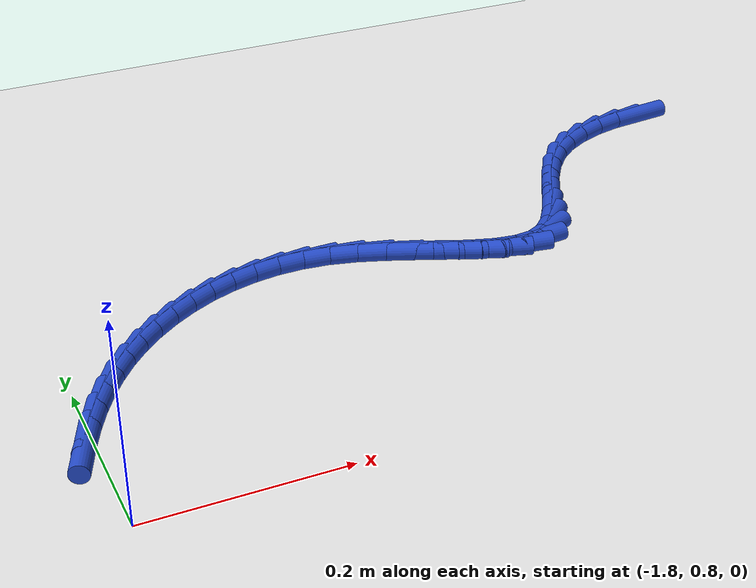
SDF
<sdf version="1.6">
 <world name="default">
  <model name="ground_plane">
   <static>1</static>
   <link name="link">
    <collision name="collision">
     <geometry><plane><normal>0 0 1</normal><size>100 100</size></plane></geometry>
     <surface><friction><ode><mu>100</mu><mu2>50</mu2></ode></friction></surface>
    </collision>
    <visual name="visual">
     <cast_shadows>0</cast_shadows>
     <geometry><plane><normal>0 0 1</normal><size>100 100</size></plane></geometry>
     <material>
      <script><uri>file://media/materials/scripts/gazebo.material</uri><name>Gazebo/WhiteGlow</name></script>
     </material>
    </visual>
   </link>
  </model>
  <model name="line">
   <link name="link_73">
    <pose>-1.0189516158003753 1.2875033139351477 0.01 0 1.57 0.10560261740623014</pose>
    <collision name="collision">
     <geometry><cylinder><radius>0.01</radius><length>0.08</length></cylinder></geometry>
    </collision>
    <visual name="visual">
     <material>
      <script><name>Gazebo/Blue</name><uri>file://media/materials/scripts/gazebo.material</uri></script>
     </material>
     <geometry><cylinder><radius>0.01</radius><length>0.08</length></cylinder></geometry>
    </visual>
   </link>
   <link name="link_74">
    <pose>-1.0502641416126792 1.2841842822185414 0.01 0 1.57 0.22751819118289002</pose>
    <collision name="collision">
     <geometry><cylinder><radius>0.01</radius><length>0.08</length></cylinder></geometry>
    </collision>
    <visual name="visual">
     <material>
      <script><name>Gazebo/Blue</name><uri>file://media/materials/scripts/gazebo.material</uri></script>
     </material>
     <geometry><cylinder><radius>0.01</radius><length>0.08</length></cylinder></geometry>
    </visual>
   </link>
   <link name="link_75">
    <pose>-1.0804068843879446 1.277205423169796 0.01 0 1.57 0.36177736097876495</pose>
    <collision name="collision">
     <geometry><cylinder><radius>0.01</radius><length>0.08</length></cylinder></geometry>
    </collision>
    <visual name="visual">
     <material>
      <script><name>Gazebo/Blue</name><uri>file://media/materials/scripts/gazebo.material</uri></script>
     </material>
     <geometry><cylinder><radius>0.01</radius><length>0.08</length></cylinder></geometry>
    </visual>
   </link>
   <link name="link_76">
    <pose>-1.1087831632364145 1.26646689182318 0.01 0 1.57 0.5113861078961459</pose>
    <collision name="collision">
     <geometry><cylinder><radius>0.01</radius><length>0.08</length></cylinder></geometry>
    </collision>
    <visual name="visual">
     <material>
      <script><name>Gazebo/Blue</name><uri>file://media/materials/scripts/gazebo.material</uri></script>
     </material>
     <geometry><cylinder><radius>0.01</radius><length>0.08</length></cylinder></geometry>
    </visual>
   </link>
   <link name="link_77">
    <pose>-1.1347962972683323 1.2518688432129599 0.01 0 1.57 0.6777690725338601</pose>
    <collision name="collision">
     <geometry><cylinder><radius>0.01</radius><length>0.08</length></cylinder></geometry>
    </collision>
    <visual name="visual">
     <material>
      <script><name>Gazebo/Blue</name><uri>file://media/materials/scripts/gazebo.material</uri></script>
     </material>
     <geometry><cylinder><radius>0.01</radius><length>0.08</length></cylinder></geometry>
    </visual>
   </link>
   <link name="link_78">
    <pose>-1.1578496055939413 1.233311432373404 0.01 0 1.57 0.8499789660706343</pose>
    <collision name="collision">
     <geometry><cylinder><radius>0.01</radius><length>0.08</length></cylinder></geometry>
    </collision>
    <visual name="visual">
     <material>
      <script><name>Gazebo/Blue</name><uri>file://media/materials/scripts/gazebo.material</uri></script>
     </material>
     <geometry><cylinder><radius>0.01</radius><length>0.08</length></cylinder></geometry>
    </visual>
   </link>
   <link name="link_79">
    <pose>-1.1775340755475856 1.210904906817466 0.01 0 1.57 0.9785196688960819</pose>
    <collision name="collision">
     <geometry><cylinder><radius>0.01</radius><length>0.08</length></cylinder></geometry>
    </collision>
    <visual name="visual">
     <material>
      <script><name>Gazebo/Blue</name><uri>file://media/materials/scripts/gazebo.material</uri></script>
     </material>
     <geometry><cylinder><radius>0.01</radius><length>0.08</length></cylinder></geometry>
    </visual>
   </link>
   <link name="link_80">
    <pose>-1.1944020579432237 1.1858357497251557 0.01 0 1.57 1.0534211688973831</pose>
    <collision name="collision">
     <geometry><cylinder><radius>0.01</radius><length>0.08</length></cylinder></geometry>
    </collision>
    <visual name="visual">
     <material>
      <script><name>Gazebo/Blue</name><uri>file://media/materials/scripts/gazebo.material</uri></script>
     </material>
     <geometry><cylinder><radius>0.01</radius><length>0.08</length></cylinder></geometry>
    </visual>
   </link>
   <link name="link_81">
    <pose>-1.209312914943217 1.1596341400485264 0.01 0 1.57 1.0792943449092827</pose>
    <collision name="collision">
     <geometry><cylinder><radius>0.01</radius><length>0.08</length></cylinder></geometry>
    </collision>
    <visual name="visual">
     <material>
      <script><name>Gazebo/Blue</name><uri>file://media/materials/scripts/gazebo.material</uri></script>
     </material>
     <geometry><cylinder><radius>0.01</radius><length>0.08</length></cylinder></geometry>
    </visual>
   </link>
   <link name="link_82">
    <pose>-1.2231261432172251 1.1338304073190486 0.01 0 1.57 1.0538018304339323</pose>
    <collision name="collision">
     <geometry><cylinder><radius>0.01</radius><length>0.08</length></cylinder></geometry>
    </collision>
    <visual name="visual">
     <material>
      <script><name>Gazebo/Blue</name><uri>file://media/materials/scripts/gazebo.material</uri></script>
     </material>
     <geometry><cylinder><radius>0.01</radius><length>0.08</length></cylinder></geometry>
    </visual>
   </link>
   <link name="link_83">
    <pose>-1.2367012394349075 1.1099548810681927 0.01 0 1.57 0.9632142778970019</pose>
    <collision name="collision">
     <geometry><cylinder><radius>0.01</radius><length>0.08</length></cylinder></geometry>
    </collision>
    <visual name="visual">
     <material>
      <script><name>Gazebo/Blue</name><uri>file://media/materials/scripts/gazebo.material</uri></script>
     </material>
     <geometry><cylinder><radius>0.01</radius><length>0.08</length></cylinder></geometry>
    </visual>
   </link>
   <link name="link_84">
    <pose>-1.2508977002659234 1.0895378908274296 0.01 0 1.57 0.777386959277107</pose>
    <collision name="collision">
     <geometry><cylinder><radius>0.01</radius><length>0.08</length></cylinder></geometry>
    </collision>
    <visual name="visual">
     <material>
      <script><name>Gazebo/Blue</name><uri>file://media/materials/scripts/gazebo.material</uri></script>
     </material>
     <geometry><cylinder><radius>0.01</radius><length>0.08</length></cylinder></geometry>
    </visual>
   </link>
   <link name="link_85">
    <pose>-1.2665750223799335 1.0741097661282302 0.01 0 1.57 0.4604583368055337</pose>
    <collision name="collision">
     <geometry><cylinder><radius>0.01</radius><length>0.08</length></cylinder></geometry>
    </collision>
    <visual name="visual">
     <material>
      <script><name>Gazebo/Blue</name><uri>file://media/materials/scripts/gazebo.material</uri></script>
     </material>
     <geometry><cylinder><radius>0.01</radius><length>0.08</length></cylinder></geometry>
    </visual>
   </link>
   <link name="link_86">
    <pose>-1.2845828539479256 1.0651775261360912 0.01 0 1.57 0.10005305150495136</pose>
    <collision name="collision">
     <geometry><cylinder><radius>0.01</radius><length>0.08</length></cylinder></geometry>
    </collision>
    <visual name="visual">
     <material>
      <script><name>Gazebo/Blue</name><uri>file://media/materials/scripts/gazebo.material</uri></script>
     </material>
     <geometry><cylinder><radius>0.01</radius><length>0.08</length></cylinder></geometry>
    </visual>
   </link>
   <link name="link_87">
    <pose>-1.3052854148795963 1.0630992321091057 0.01 0 1.57 -0.14989063920724094</pose>
    <collision name="collision">
     <geometry><cylinder><radius>0.01</radius><length>0.08</length></cylinder></geometry>
    </collision>
    <visual name="visual">
     <material>
      <script><name>Gazebo/Blue</name><uri>file://media/materials/scripts/gazebo.material</uri></script>
     </material>
     <geometry><cylinder><radius>0.01</radius><length>0.08</length></cylinder></geometry>
    </visual>
   </link>
   <link name="link_88">
    <pose>-1.3283496059032491 1.066582463758795 0.01 0 1.57 -0.2955903617481888</pose>
    <collision name="collision">
     <geometry><cylinder><radius>0.01</radius><length>0.08</length></cylinder></geometry>
    </collision>
    <visual name="visual">
     <material>
      <script><name>Gazebo/Blue</name><uri>file://media/materials/scripts/gazebo.material</uri></script>
     </material>
     <geometry><cylinder><radius>0.01</radius><length>0.08</length></cylinder></geometry>
    </visual>
   </link>
   <link name="link_89">
    <pose>-1.3533883504169526 1.0742070421032976 0.01 0 1.57 -0.3706010531125822</pose>
    <collision name="collision">
     <geometry><cylinder><radius>0.01</radius><length>0.08</length></cylinder></geometry>
    </collision>
    <visual name="visual">
     <material>
      <script><name>Gazebo/Blue</name><uri>file://media/materials/scripts/gazebo.material</uri></script>
     </material>
     <geometry><cylinder><radius>0.01</radius><length>0.08</length></cylinder></geometry>
    </visual>
   </link>
   <link name="link_90">
    <pose>-1.380014571818775 1.0845527881607504 0.01 0 1.57 -0.39639179155879334</pose>
    <collision name="collision">
     <geometry><cylinder><radius>0.01</radius><length>0.08</length></cylinder></geometry>
    </collision>
    <visual name="visual">
     <material>
      <script><name>Gazebo/Blue</name><uri>file://media/materials/scripts/gazebo.material</uri></script>
     </material>
     <geometry><cylinder><radius>0.01</radius><length>0.08</length></cylinder></geometry>
    </visual>
   </link>
   <link name="link_91">
    <pose>-1.4078411935067852 1.0961995229492911 0.01 0 1.57 -0.38265868403797737</pose>
    <collision name="collision">
     <geometry><cylinder><radius>0.01</radius><length>0.08</length></cylinder></geometry>
    </collision>
    <visual name="visual">
     <material>
      <script><name>Gazebo/Blue</name><uri>file://media/materials/scripts/gazebo.material</uri></script>
     </material>
     <geometry><cylinder><radius>0.01</radius><length>0.08</length></cylinder></geometry>
    </visual>
   </link>
   <link name="link_92">
    <pose>-1.43648113887905 1.1077270674870572 0.01 0 1.57 -0.330993664727191</pose>
    <collision name="collision">
     <geometry><cylinder><radius>0.01</radius><length>0.08</length></cylinder></geometry>
    </collision>
    <visual name="visual">
     <material>
      <script><name>Gazebo/Blue</name><uri>file://media/materials/scripts/gazebo.material</uri></script>
     </material>
     <geometry><cylinder><radius>0.01</radius><length>0.08</length></cylinder></geometry>
    </visual>
   </link>
   <link name="link_93">
    <pose>-1.4655473313336398 1.1177152427921866 0.01 0 1.57 -0.23704471144175404</pose>
    <collision name="collision">
     <geometry><cylinder><radius>0.01</radius><length>0.08</length></cylinder></geometry>
    </collision>
    <visual name="visual">
     <material>
      <script><name>Gazebo/Blue</name><uri>file://media/materials/scripts/gazebo.material</uri></script>
     </material>
     <geometry><cylinder><radius>0.01</radius><length>0.08</length></cylinder></geometry>
    </visual>
   </link>
   <link name="link_94">
    <pose>-1.4946530714228965 1.1247468021277305 0.01 0 1.57 -0.10919526281366577</pose>
    <collision name="collision">
     <geometry><cylinder><radius>0.01</radius><length>0.08</length></cylinder></geometry>
    </collision>
    <visual name="visual">
     <material>
      <script><name>Gazebo/Blue</name><uri>file://media/materials/scripts/gazebo.material</uri></script>
     </material>
     <geometry><cylinder><radius>0.01</radius><length>0.08</length></cylinder></geometry>
    </visual>
   </link>
   <link name="link_95">
    <pose>-1.523476257795823 1.1279067267651335 0.01 0 1.57 0.019740306630249397</pose>
    <collision name="collision">
     <geometry><cylinder><radius>0.01</radius><length>0.08</length></cylinder></geometry>
    </collision>
    <visual name="visual">
     <material>
      <script><name>Gazebo/Blue</name><uri>file://media/materials/scripts/gazebo.material</uri></script>
     </material>
     <geometry><cylinder><radius>0.01</radius><length>0.08</length></cylinder></geometry>
    </visual>
   </link>
   <link name="link_96">
    <pose>-1.5518320176315776 1.1273469026519876 0.01 0 1.57 0.14299797994107563</pose>
    <collision name="collision">
     <geometry><cylinder><radius>0.01</radius><length>0.08</length></cylinder></geometry>
    </collision>
    <visual name="visual">
     <material>
      <script><name>Gazebo/Blue</name><uri>file://media/materials/scripts/gazebo.material</uri></script>
     </material>
     <geometry><cylinder><radius>0.01</radius><length>0.08</length></cylinder></geometry>
    </visual>
   </link>
   <link name="link_97">
    <pose>-1.579553021900639 1.1233556126861093 0.01 0 1.57 0.259079025258489</pose>
    <collision name="collision">
     <geometry><cylinder><radius>0.01</radius><length>0.08</length></cylinder></geometry>
    </collision>
    <visual name="visual">
     <material>
      <script><name>Gazebo/Blue</name><uri>file://media/materials/scripts/gazebo.material</uri></script>
     </material>
     <geometry><cylinder><radius>0.01</radius><length>0.08</length></cylinder></geometry>
    </visual>
   </link>
   <link name="link_98">
    <pose>-1.6064719415734874 1.1162211397653155 0.01 0 1.57 0.3674690088622995</pose>
    <collision name="collision">
     <geometry><cylinder><radius>0.01</radius><length>0.08</length></cylinder></geometry>
    </collision>
    <visual name="visual">
     <material>
      <script><name>Gazebo/Blue</name><uri>file://media/materials/scripts/gazebo.material</uri></script>
     </material>
     <geometry><cylinder><radius>0.01</radius><length>0.08</length></cylinder></geometry>
    </visual>
   </link>
   <link name="link_99">
    <pose>-1.6324214476206005 1.1062317667874217 0.01 0 1.57 0.4684595625822171</pose>
    <collision name="collision">
     <geometry><cylinder><radius>0.01</radius><length>0.08</length></cylinder></geometry>
    </collision>
    <visual name="visual">
     <material>
      <script><name>Gazebo/Blue</name><uri>file://media/materials/scripts/gazebo.material</uri></script>
     </material>
     <geometry><cylinder><radius>0.01</radius><length>0.08</length></cylinder></geometry>
    </visual>
   </link>
   <link name="link_100">
    <pose>-1.6572342110124587 1.0936757766502456 0.01 0 1.57 0.5629126338846331</pose>
    <collision name="collision">
     <geometry><cylinder><radius>0.01</radius><length>0.08</length></cylinder></geometry>
    </collision>
    <visual name="visual">
     <material>
      <script><name>Gazebo/Blue</name><uri>file://media/materials/scripts/gazebo.material</uri></script>
     </material>
     <geometry><cylinder><radius>0.01</radius><length>0.08</length></cylinder></geometry>
    </visual>
   </link>
   <link name="link_101">
    <pose>-1.6807429027195404 1.0788414522516032 0.01 0 1.57 0.6520538541744123</pose>
    <collision name="collision">
     <geometry><cylinder><radius>0.01</radius><length>0.08</length></cylinder></geometry>
    </collision>
    <visual name="visual">
     <material>
      <script><name>Gazebo/Blue</name><uri>file://media/materials/scripts/gazebo.material</uri></script>
     </material>
     <geometry><cylinder><radius>0.01</radius><length>0.08</length></cylinder></geometry>
    </visual>
   </link>
   <link name="link_102">
    <pose>-1.7027801937123253 1.0620170764893104 0.01 0 1.57 0.737331652127989</pose>
    <collision name="collision">
     <geometry><cylinder><radius>0.01</radius><length>0.08</length></cylinder></geometry>
    </collision>
    <visual name="visual">
     <material>
      <script><name>Gazebo/Blue</name><uri>file://media/materials/scripts/gazebo.material</uri></script>
     </material>
     <geometry><cylinder><radius>0.01</radius><length>0.08</length></cylinder></geometry>
    </visual>
   </link>
   <link name="link_103">
    <pose>-1.7231787549612925 1.043490932261185 0.01 0 1.57 0.8203112113492824</pose>
    <collision name="collision">
     <geometry><cylinder><radius>0.01</radius><length>0.08</length></cylinder></geometry>
    </collision>
    <visual name="visual">
     <material>
      <script><name>Gazebo/Blue</name><uri>file://media/materials/scripts/gazebo.material</uri></script>
     </material>
     <geometry><cylinder><radius>0.01</radius><length>0.08</length></cylinder></geometry>
    </visual>
   </link>
   <link name="link_104">
    <pose>-1.7417735513558907 1.0235501960600504 0.01 0 1.57 0.9004192754535358</pose>
    <collision name="collision">
     <geometry><cylinder><radius>0.01</radius><length>0.08</length></cylinder></geometry>
    </collision>
    <visual name="visual">
     <material>
      <script><name>Gazebo/Blue</name><uri>file://media/materials/scripts/gazebo.material</uri></script>
     </material>
     <geometry><cylinder><radius>0.01</radius><length>0.08</length></cylinder></geometry>
    </visual>
   </link>
   <link name="link_105">
    <pose>-1.7585262811191564 1.0024209182470907 0.01 0 1.57 0.9743006137799208</pose>
    <collision name="collision">
     <geometry><cylinder><radius>0.01</radius><length>0.08</length></cylinder></geometry>
    </collision>
    <visual name="visual">
     <material>
      <script><name>Gazebo/Blue</name><uri>file://media/materials/scripts/gazebo.material</uri></script>
     </material>
     <geometry><cylinder><radius>0.01</radius><length>0.08</length></cylinder></geometry>
    </visual>
   </link>
   <link name="link_106">
    <pose>-1.7735890545670137 0.9802373094573003 0.01 0 1.57 1.0408182577865766</pose>
    <collision name="collision">
     <geometry><cylinder><radius>0.01</radius><length>0.08</length></cylinder></geometry>
    </collision>
    <visual name="visual">
     <material>
      <script><name>Gazebo/Blue</name><uri>file://media/materials/scripts/gazebo.material</uri></script>
     </material>
     <geometry><cylinder><radius>0.01</radius><length>0.08</length></cylinder></geometry>
    </visual>
   </link>
   <link name="link_107">
    <pose>-1.787129677104814 0.957126010256495 0.01 0 1.57 1.0994801871928581</pose>
    <collision name="collision">
     <geometry><cylinder><radius>0.01</radius><length>0.08</length></cylinder></geometry>
    </collision>
    <visual name="visual">
     <material>
      <script><name>Gazebo/Blue</name><uri>file://media/materials/scripts/gazebo.material</uri></script>
     </material>
     <geometry><cylinder><radius>0.01</radius><length>0.08</length></cylinder></geometry>
    </visual>
   </link>
   <link name="link_108">
    <pose>-1.7993159541379091 0.933213661210491 0.01 0 1.57 1.1501195003999785</pose>
    <collision name="collision">
     <geometry><cylinder><radius>0.01</radius><length>0.08</length></cylinder></geometry>
    </collision>
    <visual name="visual">
     <material>
      <script><name>Gazebo/Blue</name><uri>file://media/materials/scripts/gazebo.material</uri></script>
     </material>
     <geometry><cylinder><radius>0.01</radius><length>0.08</length></cylinder></geometry>
    </visual>
   </link>
   <link name="link_109">
    <pose>-1.8103156910716502 0.9086269028851033 0.01 0 1.57 1.1926617298237494</pose>
    <collision name="collision">
     <geometry><cylinder><radius>0.01</radius><length>0.08</length></cylinder></geometry>
    </collision>
    <visual name="visual">
     <material>
      <script><name>Gazebo/Blue</name><uri>file://media/materials/scripts/gazebo.material</uri></script>
     </material>
     <geometry><cylinder><radius>0.01</radius><length>0.08</length></cylinder></geometry>
    </visual>
   </link>
  </model>
 </world>
</sdf>
